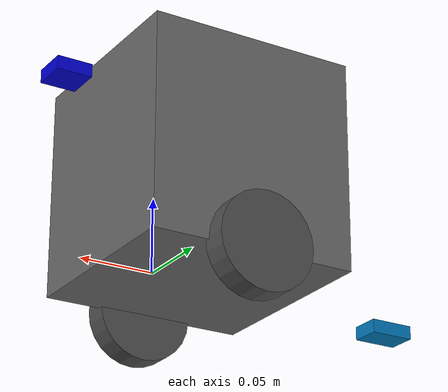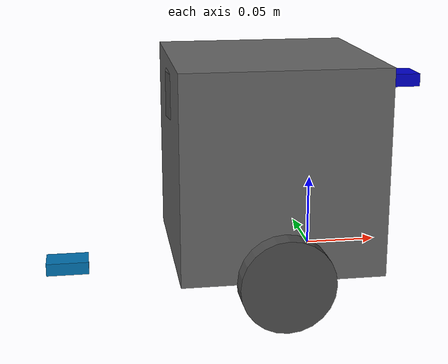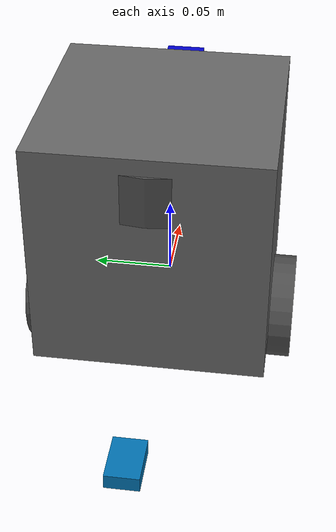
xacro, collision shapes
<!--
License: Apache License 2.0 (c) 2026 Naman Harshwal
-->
<?xml version="1.0"?>

<robot xmlns:xacro="http://www.ros.org/wiki/xacro" name="custom_bot">
  <xacro:property name="PI"               value="3.14159265359"/>
  <xacro:property name="wheel_radius"     value="0.0325"/>
  <xacro:property name="wheel_separation" value="0.150"/>
  <xacro:property name="mesh_path"        value="package://custom_bot_cpp/description/meshes"/>

  <material name="black"><color rgba="0.0 0.0 0.0 1.0"/></material>
  <material name="dark"><color rgba="0.3 0.3 0.3 1.0"/></material>
  <material name="light_black"><color rgba="0.4 0.4 0.4 1.0"/></material>
  <material name="blue"><color rgba="0.0 0.0 0.8 1.0"/></material>
  <material name="green"><color rgba="0.0 0.8 0.0 1.0"/></material>
  <material name="grey"><color rgba="0.5 0.5 0.5 1.0"/></material>
  <material name="orange"><color rgba="1.0 0.4235 0.0392 1.0"/></material>
  <material name="brown"><color rgba="0.8706 0.8118 0.7647 1.0"/></material>
  <material name="white"><color rgba="1.0 1.0 1.0 1.0"/></material>
  <material name="red"><color rgba="0.8 0.0 0.0 1.0"/></material>

  <link name="base_footprint"/>
  <joint name="base_footprint_joint" type="fixed">
    <parent link="base_footprint"/>
    <child  link="base_link"/>
    <origin xyz="0 0 0" rpy="0 0 0"/>
  </joint>

  <link name="base_link">
    <visual>
      <origin xyz="-0.032 0 0.0" rpy="0 0 0"/>
      <geometry>
        <mesh filename="${mesh_path}/bases/burger_base.stl" scale="0.001 0.001 0.001"/>
      </geometry>
      <material name="light_black"/>
    </visual>
    <collision>
      <origin xyz="-0.032 0 0.070" rpy="0 0 0"/>
      <geometry><box size="0.140 0.140 0.143"/></geometry>
    </collision>
    <inertial>
      <origin xyz="0 0 0" rpy="0 0 0"/>
      <mass value="8.2573504e-01"/>
      <inertia ixx="2.2124416e-03" ixy="-1.2294101e-05" ixz="3.4938785e-05"
               iyy="2.1193702e-03" iyz="-5.0120904e-06" izz="2.0064271e-03"/>
    </inertial>
  </link>

  <link name="wheel_left_link">
    <visual>
      <origin xyz="0 0 0" rpy="1.57 0 0"/>
      <geometry>
        <mesh filename="${mesh_path}/wheels/left_tire.stl" scale="0.001 0.001 0.001"/>
      </geometry>
      <material name="dark"/>
    </visual>
    <collision>
      <origin xyz="0 0 0" rpy="0 0 0"/>
      <geometry><cylinder length="0.018" radius="${wheel_radius}"/></geometry>
    </collision>
    <inertial>
      <origin xyz="0 0 0" rpy="0 0 0"/>
      <mass value="2.8498940e-02"/>
      <inertia ixx="1.1175580e-05" ixy="-4.2369783e-11" ixz="-5.9381719e-09"
               iyy="1.1192413e-05" iyz="-1.4400107e-11" izz="2.0712558e-05"/>
    </inertial>
  </link>
  <joint name="wheel_left_joint" type="continuous">
    <parent link="base_link"/>
    <child  link="wheel_left_link"/>
    <origin xyz="-0.032 ${wheel_separation/2} 0.0" rpy="-1.57 0 0"/>
    <axis xyz="0 0 1"/>
  </joint>

  <link name="wheel_right_link">
    <visual>
      <origin xyz="0 0 0" rpy="1.57 0 0"/>
      <geometry>
        <mesh filename="${mesh_path}/wheels/right_tire.stl" scale="0.001 0.001 0.001"/>
      </geometry>
      <material name="dark"/>
    </visual>
    <collision>
      <origin xyz="0 0 0" rpy="0 0 0"/>
      <geometry><cylinder length="0.018" radius="${wheel_radius}"/></geometry>
    </collision>
    <inertial>
      <origin xyz="0 0 0" rpy="0 0 0"/>
      <mass value="2.8498940e-02"/>
      <inertia ixx="1.1175580e-05" ixy="-4.2369783e-11" ixz="-5.9381719e-09"
               iyy="1.1192413e-05" iyz="-1.4400107e-11" izz="2.0712558e-05"/>
    </inertial>
  </link>
  <joint name="wheel_right_joint" type="continuous">
    <parent link="base_link"/>
    <child  link="wheel_right_link"/>
    <origin xyz="-0.032 ${-wheel_separation/2} 0.0" rpy="-1.57 0 0"/>
    <axis xyz="0 0 1"/>
  </joint>

  <link name="caster_back_link">
    <collision>
      <origin xyz="0 0.001 0" rpy="0 0 0"/>
      <geometry><box size="0.030 0.009 0.020"/></geometry>
    </collision>
    <inertial>
      <origin xyz="0 0 0" rpy="0 0 0"/>
      <mass value="0.005"/>
      <inertia ixx="0.001" ixy="0.0" ixz="0.0" iyy="0.001" iyz="0.0" izz="0.001"/>
    </inertial>
  </link>
  <joint name="caster_back_joint" type="fixed">
    <parent link="base_link"/>
    <child  link="caster_back_link"/>
    <origin xyz="-0.177 0 -0.0064" rpy="-1.57 0 0"/>
  </joint>

  <link name="imu_link">
    <visual>
      <origin xyz="0 0 0" rpy="0 0 0"/>
      <geometry><box size="0.025 0.025 0.004"/></geometry>
      <material name="green"/>
    </visual>
    <collision>
      <origin xyz="0 0 0" rpy="0 0 0"/>
      <geometry><box size="0.025 0.025 0.004"/></geometry>
    </collision>
    <inertial>
      <origin xyz="0 0 0" rpy="0 0 0"/>
      <mass value="0.005"/>
      <inertia ixx="1e-6" ixy="0" ixz="0" iyy="1e-6" iyz="0" izz="1e-6"/>
    </inertial>
  </link>
  <joint name="imu_joint" type="fixed">
    <parent link="base_link"/>
    <child  link="imu_link"/>
    <origin xyz="-0.032 0 0.068" rpy="0 0 0"/>
  </joint>

  <link name="laser_frame">
    <visual>
      <origin xyz="0 0 0.0" rpy="0 0 0"/>
      <geometry>
        <mesh filename="${mesh_path}/sensors/lds.stl" scale="0.001 0.001 0.001"/>
      </geometry>
      <material name="dark"/>
    </visual>
    <collision>
      <origin xyz="0.015 0 -0.0065" rpy="0 0 0"/>
      <geometry><cylinder length="0.0315" radius="0.055"/></geometry>
    </collision>
    <inertial>
      <mass value="0.114"/>
      <origin xyz="0 0 0" rpy="0 0 0"/>
      <inertia ixx="0.001" ixy="0.0" ixz="0.0" iyy="0.001" iyz="0.0" izz="0.001"/>
    </inertial>
  </link>
  <joint name="scan_joint" type="fixed">
    <parent link="base_link"/>
    <child  link="laser_frame"/>
    <origin xyz="-0.064 0 0.122" rpy="0 0 0"/>
  </joint>

  <link name="camera_link">
    <visual>
      <origin xyz="0 0 0" rpy="0 0 0"/>
      <geometry><box size="0.024 0.024 0.009"/></geometry>
      <material name="blue"/>
    </visual>
    <collision>
      <origin xyz="0 0 0" rpy="0 0 0"/>
      <geometry><box size="0.024 0.024 0.009"/></geometry>
    </collision>
    <inertial>
      <origin xyz="0 0 0" rpy="0 0 0"/>
      <mass value="0.003"/>
      <inertia ixx="1e-6" ixy="0" ixz="0" iyy="1e-6" iyz="0" izz="1e-6"/>
    </inertial>
  </link>
  <joint name="camera_joint" type="fixed">
    <parent link="base_link"/>
    <child  link="camera_link"/>
    <origin xyz="0.064 0.0 0.122" rpy="0 0 0"/>
  </joint>

  <link name="camera_optical_frame"/>
  <joint name="camera_optical_joint" type="fixed">
    <parent link="camera_link"/>
    <child  link="camera_optical_frame"/>
    <origin xyz="0 0 0" rpy="-1.5707963 0 -1.5707963"/>
  </joint>

</robot>
